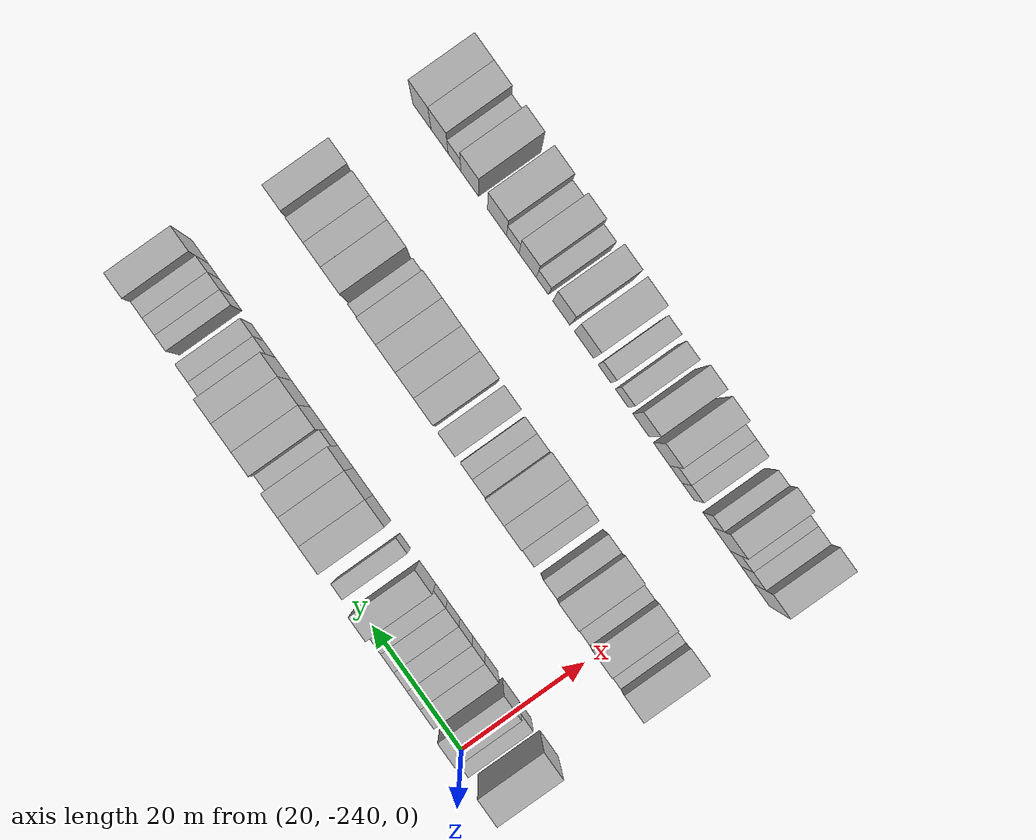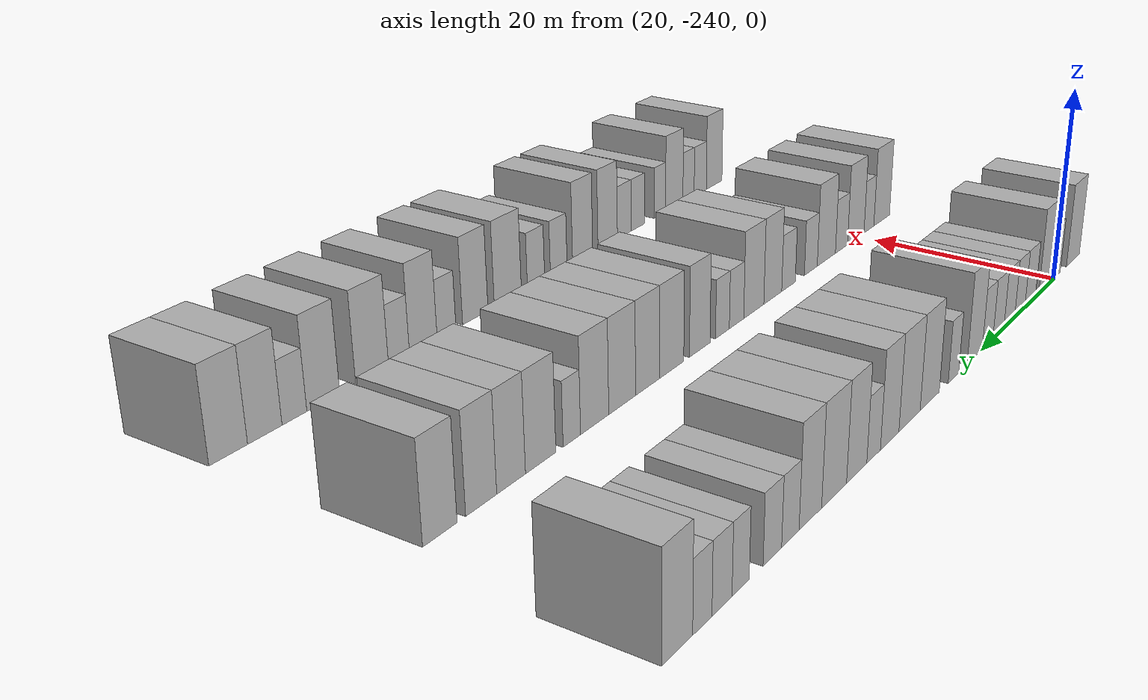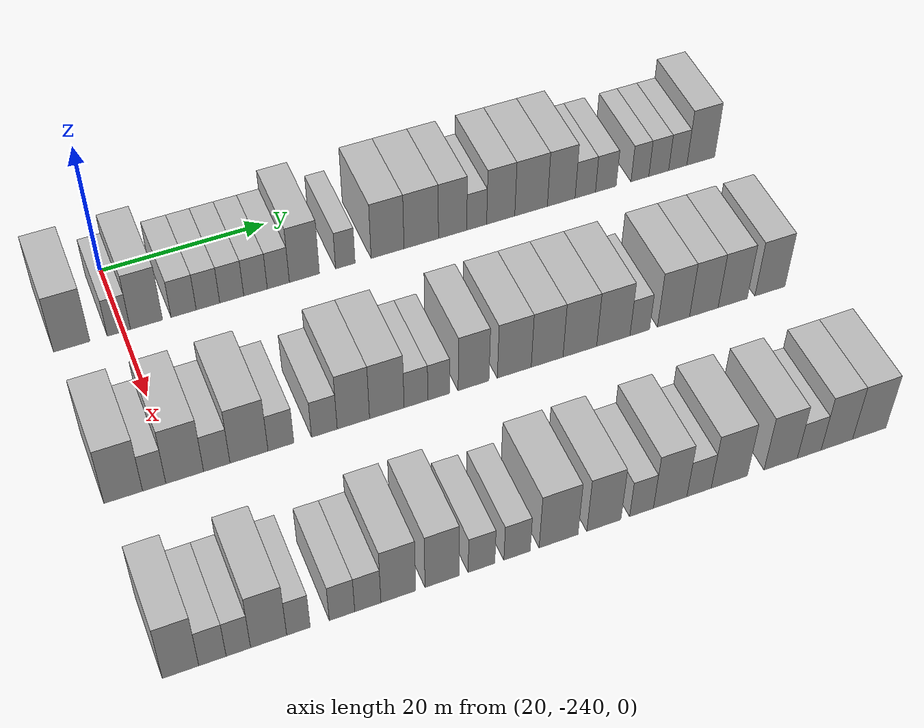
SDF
<sdf version="1.6">
 <world name="default">
  <model name="building_1">
   <static>1</static>
   <pose>25.0000 -245.9093 0 0.000000 0.000000 0.000000</pose>
   <link name="link">
    <pose>0 0 4.50 0 0 0</pose>
    <collision name="collision"><geometry><box><size>10.0000 4.1814 9.0000</size></box></geometry></collision>
    <visual name="visual">
     <cast_shadows>0</cast_shadows>
     <geometry><box><size>10.0000 4.1814 9.0000</size></box></geometry>
     <material>
      <script>
       <uri>model://HANNAS_wall/materials/scripts</uri>
       <uri>model://HANNAS_wall/materials/textures</uri>
       <name>vrc/HANNAS_wall</name>
      </script>
     </material>
    </visual>
   </link>
  </model>
  <model name="building_2">
   <static>1</static>
   <pose>25.0000 -240.4762 0 0.000000 0.000000 0.000000</pose>
   <link name="link">
    <pose>0 0 3.00 0 0 0</pose>
    <collision name="collision"><geometry><box><size>10.0000 2.6848 6.0000</size></box></geometry></collision>
    <visual name="visual">
     <cast_shadows>0</cast_shadows>
     <geometry><box><size>10.0000 2.6848 6.0000</size></box></geometry>
     <material>
      <script>
       <uri>model://HANNAS_wall/materials/scripts</uri>
       <uri>model://HANNAS_wall/materials/textures</uri>
       <name>vrc/HANNAS_wall</name>
      </script>
     </material>
    </visual>
   </link>
  </model>
  <model name="building_3">
   <static>1</static>
   <pose>25.0000 -237.2547 0 0.000000 0.000000 0.000000</pose>
   <link name="link">
    <pose>0 0 4.50 0 0 0</pose>
    <collision name="collision"><geometry><box><size>10.0000 3.7582 9.0000</size></box></geometry></collision>
    <visual name="visual">
     <cast_shadows>0</cast_shadows>
     <geometry><box><size>10.0000 3.7582 9.0000</size></box></geometry>
     <material>
      <script>
       <uri>model://HANNAS_wall/materials/scripts</uri>
       <uri>model://HANNAS_wall/materials/textures</uri>
       <name>vrc/HANNAS_wall</name>
      </script>
     </material>
    </visual>
   </link>
  </model>
  <model name="building_4">
   <static>1</static>
   <pose>25.0000 -232.8869 0 0.000000 0.000000 0.000000</pose>
   <link name="link">
    <pose>0 0 3.00 0 0 0</pose>
    <collision name="collision"><geometry><box><size>10.0000 2.9774 6.0000</size></box></geometry></collision>
    <visual name="visual">
     <cast_shadows>0</cast_shadows>
     <geometry><box><size>10.0000 2.9774 6.0000</size></box></geometry>
     <material>
      <script>
       <uri>model://HANNAS_wall/materials/scripts</uri>
       <uri>model://HANNAS_wall/materials/textures</uri>
       <name>vrc/HANNAS_wall</name>
      </script>
     </material>
    </visual>
   </link>
  </model>
  <model name="building_5">
   <static>1</static>
   <pose>25.0000 -229.9949 0 0.000000 0.000000 0.000000</pose>
   <link name="link">
    <pose>0 0 3.00 0 0 0</pose>
    <collision name="collision"><geometry><box><size>10.0000 2.8066 6.0000</size></box></geometry></collision>
    <visual name="visual">
     <cast_shadows>0</cast_shadows>
     <geometry><box><size>10.0000 2.8066 6.0000</size></box></geometry>
     <material>
      <script>
       <uri>model://HANNAS_wall/materials/scripts</uri>
       <uri>model://HANNAS_wall/materials/textures</uri>
       <name>vrc/HANNAS_wall</name>
      </script>
     </material>
    </visual>
   </link>
  </model>
  <model name="building_6">
   <static>1</static>
   <pose>25.0000 -227.1501 0 0.000000 0.000000 0.000000</pose>
   <link name="link">
    <pose>0 0 3.00 0 0 0</pose>
    <collision name="collision"><geometry><box><size>10.0000 2.8830 6.0000</size></box></geometry></collision>
    <visual name="visual">
     <cast_shadows>0</cast_shadows>
     <geometry><box><size>10.0000 2.8830 6.0000</size></box></geometry>
     <material>
      <script>
       <uri>model://HANNAS_wall/materials/scripts</uri>
       <uri>model://HANNAS_wall/materials/textures</uri>
       <name>vrc/HANNAS_wall</name>
      </script>
     </material>
    </visual>
   </link>
  </model>
  <model name="building_7">
   <static>1</static>
   <pose>25.0000 -224.2862 0 0.000000 0.000000 0.000000</pose>
   <link name="link">
    <pose>0 0 3.00 0 0 0</pose>
    <collision name="collision"><geometry><box><size>10.0000 2.8448 6.0000</size></box></geometry></collision>
    <visual name="visual">
     <cast_shadows>0</cast_shadows>
     <geometry><box><size>10.0000 2.8448 6.0000</size></box></geometry>
     <material>
      <script>
       <uri>model://HANNAS_wall/materials/scripts</uri>
       <uri>model://HANNAS_wall/materials/textures</uri>
       <name>vrc/HANNAS_wall</name>
      </script>
     </material>
    </visual>
   </link>
  </model>
  <model name="building_8">
   <static>1</static>
   <pose>25.0000 -221.5211 0 0.000000 0.000000 0.000000</pose>
   <link name="link">
    <pose>0 0 3.00 0 0 0</pose>
    <collision name="collision"><geometry><box><size>10.0000 2.6853 6.0000</size></box></geometry></collision>
    <visual name="visual">
     <cast_shadows>0</cast_shadows>
     <geometry><box><size>10.0000 2.6853 6.0000</size></box></geometry>
     <material>
      <script>
       <uri>model://HANNAS_wall/materials/scripts</uri>
       <uri>model://HANNAS_wall/materials/textures</uri>
       <name>vrc/HANNAS_wall</name>
      </script>
     </material>
    </visual>
   </link>
  </model>
  <model name="building_9">
   <static>1</static>
   <pose>25.0000 -218.3408 0 0.000000 0.000000 0.000000</pose>
   <link name="link">
    <pose>0 0 4.50 0 0 0</pose>
    <collision name="collision"><geometry><box><size>10.0000 3.6753 9.0000</size></box></geometry></collision>
    <visual name="visual">
     <cast_shadows>0</cast_shadows>
     <geometry><box><size>10.0000 3.6753 9.0000</size></box></geometry>
     <material>
      <script>
       <uri>model://HANNAS_wall/materials/scripts</uri>
       <uri>model://HANNAS_wall/materials/textures</uri>
       <name>vrc/HANNAS_wall</name>
      </script>
     </material>
    </visual>
   </link>
  </model>
  <model name="building_10">
   <static>1</static>
   <pose>25.0000 -213.2970 0 0.000000 0.000000 0.000000</pose>
   <link name="link">
    <pose>0 0 3.00 0 0 0</pose>
    <collision name="collision"><geometry><box><size>10.0000 2.4124 6.0000</size></box></geometry></collision>
    <visual name="visual">
     <cast_shadows>0</cast_shadows>
     <geometry><box><size>10.0000 2.4124 6.0000</size></box></geometry>
     <material>
      <script>
       <uri>model://HANNAS_wall/materials/scripts</uri>
       <uri>model://HANNAS_wall/materials/textures</uri>
       <name>vrc/HANNAS_wall</name>
      </script>
     </material>
    </visual>
   </link>
  </model>
  <model name="building_11">
   <static>1</static>
   <pose>25.0000 -208.0230 0 0.000000 0.000000 0.000000</pose>
   <link name="link">
    <pose>0 0 4.50 0 0 0</pose>
    <collision name="collision"><geometry><box><size>10.0000 4.1356 9.0000</size></box></geometry></collision>
    <visual name="visual">
     <cast_shadows>0</cast_shadows>
     <geometry><box><size>10.0000 4.1356 9.0000</size></box></geometry>
     <material>
      <script>
       <uri>model://HANNAS_wall/materials/scripts</uri>
       <uri>model://HANNAS_wall/materials/textures</uri>
       <name>vrc/HANNAS_wall</name>
      </script>
     </material>
    </visual>
   </link>
  </model>
  <model name="building_12">
   <static>1</static>
   <pose>25.0000 -203.7752 0 0.000000 0.000000 0.000000</pose>
   <link name="link">
    <pose>0 0 4.50 0 0 0</pose>
    <collision name="collision"><geometry><box><size>10.0000 4.3599 9.0000</size></box></geometry></collision>
    <visual name="visual">
     <cast_shadows>0</cast_shadows>
     <geometry><box><size>10.0000 4.3599 9.0000</size></box></geometry>
     <material>
      <script>
       <uri>model://HANNAS_wall/materials/scripts</uri>
       <uri>model://HANNAS_wall/materials/textures</uri>
       <name>vrc/HANNAS_wall</name>
      </script>
     </material>
    </visual>
   </link>
  </model>
  <model name="building_13">
   <static>1</static>
   <pose>25.0000 -199.7875 0 0.000000 0.000000 0.000000</pose>
   <link name="link">
    <pose>0 0 4.50 0 0 0</pose>
    <collision name="collision"><geometry><box><size>10.0000 3.6156 9.0000</size></box></geometry></collision>
    <visual name="visual">
     <cast_shadows>0</cast_shadows>
     <geometry><box><size>10.0000 3.6156 9.0000</size></box></geometry>
     <material>
      <script>
       <uri>model://HANNAS_wall/materials/scripts</uri>
       <uri>model://HANNAS_wall/materials/textures</uri>
       <name>vrc/HANNAS_wall</name>
      </script>
     </material>
    </visual>
   </link>
  </model>
  <model name="building_14">
   <static>1</static>
   <pose>25.0000 -196.6971 0 0.000000 0.000000 0.000000</pose>
   <link name="link">
    <pose>0 0 3.00 0 0 0</pose>
    <collision name="collision"><geometry><box><size>10.0000 2.5653 6.0000</size></box></geometry></collision>
    <visual name="visual">
     <cast_shadows>0</cast_shadows>
     <geometry><box><size>10.0000 2.5653 6.0000</size></box></geometry>
     <material>
      <script>
       <uri>model://HANNAS_wall/materials/scripts</uri>
       <uri>model://HANNAS_wall/materials/textures</uri>
       <name>vrc/HANNAS_wall</name>
      </script>
     </material>
    </visual>
   </link>
  </model>
  <model name="building_15">
   <static>1</static>
   <pose>25.0000 -193.5860 0 0.000000 0.000000 0.000000</pose>
   <link name="link">
    <pose>0 0 4.50 0 0 0</pose>
    <collision name="collision"><geometry><box><size>10.0000 3.6568 9.0000</size></box></geometry></collision>
    <visual name="visual">
     <cast_shadows>0</cast_shadows>
     <geometry><box><size>10.0000 3.6568 9.0000</size></box></geometry>
     <material>
      <script>
       <uri>model://HANNAS_wall/materials/scripts</uri>
       <uri>model://HANNAS_wall/materials/textures</uri>
       <name>vrc/HANNAS_wall</name>
      </script>
     </material>
    </visual>
   </link>
  </model>
  <model name="building_16">
   <static>1</static>
   <pose>25.0000 -189.6194 0 0.000000 0.000000 0.000000</pose>
   <link name="link">
    <pose>0 0 4.50 0 0 0</pose>
    <collision name="collision"><geometry><box><size>10.0000 4.2762 9.0000</size></box></geometry></collision>
    <visual name="visual">
     <cast_shadows>0</cast_shadows>
     <geometry><box><size>10.0000 4.2762 9.0000</size></box></geometry>
     <material>
      <script>
       <uri>model://HANNAS_wall/materials/scripts</uri>
       <uri>model://HANNAS_wall/materials/textures</uri>
       <name>vrc/HANNAS_wall</name>
      </script>
     </material>
    </visual>
   </link>
  </model>
  <model name="building_17">
   <static>1</static>
   <pose>25.0000 -185.6479 0 0.000000 0.000000 0.000000</pose>
   <link name="link">
    <pose>0 0 4.50 0 0 0</pose>
    <collision name="collision"><geometry><box><size>10.0000 3.6668 9.0000</size></box></geometry></collision>
    <visual name="visual">
     <cast_shadows>0</cast_shadows>
     <geometry><box><size>10.0000 3.6668 9.0000</size></box></geometry>
     <material>
      <script>
       <uri>model://HANNAS_wall/materials/scripts</uri>
       <uri>model://HANNAS_wall/materials/textures</uri>
       <name>vrc/HANNAS_wall</name>
      </script>
     </material>
    </visual>
   </link>
  </model>
  <model name="building_18">
   <static>1</static>
   <pose>25.0000 -182.4574 0 0.000000 0.000000 0.000000</pose>
   <link name="link">
    <pose>0 0 3.00 0 0 0</pose>
    <collision name="collision"><geometry><box><size>10.0000 2.7142 6.0000</size></box></geometry></collision>
    <visual name="visual">
     <cast_shadows>0</cast_shadows>
     <geometry><box><size>10.0000 2.7142 6.0000</size></box></geometry>
     <material>
      <script>
       <uri>model://HANNAS_wall/materials/scripts</uri>
       <uri>model://HANNAS_wall/materials/textures</uri>
       <name>vrc/HANNAS_wall</name>
      </script>
     </material>
    </visual>
   </link>
  </model>
  <model name="building_19">
   <static>1</static>
   <pose>25.0000 -179.7109 0 0.000000 0.000000 0.000000</pose>
   <link name="link">
    <pose>0 0 3.00 0 0 0</pose>
    <collision name="collision"><geometry><box><size>10.0000 2.7788 6.0000</size></box></geometry></collision>
    <visual name="visual">
     <cast_shadows>0</cast_shadows>
     <geometry><box><size>10.0000 2.7788 6.0000</size></box></geometry>
     <material>
      <script>
       <uri>model://HANNAS_wall/materials/scripts</uri>
       <uri>model://HANNAS_wall/materials/textures</uri>
       <name>vrc/HANNAS_wall</name>
      </script>
     </material>
    </visual>
   </link>
  </model>
  <model name="building_20">
   <static>1</static>
   <pose>25.0000 -175.1163 0 0.000000 0.000000 0.000000</pose>
   <link name="link">
    <pose>0 0 3.00 0 0 0</pose>
    <collision name="collision"><geometry><box><size>10.0000 2.4105 6.0000</size></box></geometry></collision>
    <visual name="visual">
     <cast_shadows>0</cast_shadows>
     <geometry><box><size>10.0000 2.4105 6.0000</size></box></geometry>
     <material>
      <script>
       <uri>model://HANNAS_wall/materials/scripts</uri>
       <uri>model://HANNAS_wall/materials/textures</uri>
       <name>vrc/HANNAS_wall</name>
      </script>
     </material>
    </visual>
   </link>
  </model>
  <model name="building_21">
   <static>1</static>
   <pose>25.0000 -172.5600 0 0.000000 0.000000 0.000000</pose>
   <link name="link">
    <pose>0 0 3.00 0 0 0</pose>
    <collision name="collision"><geometry><box><size>10.0000 2.7021 6.0000</size></box></geometry></collision>
    <visual name="visual">
     <cast_shadows>0</cast_shadows>
     <geometry><box><size>10.0000 2.7021 6.0000</size></box></geometry>
     <material>
      <script>
       <uri>model://HANNAS_wall/materials/scripts</uri>
       <uri>model://HANNAS_wall/materials/textures</uri>
       <name>vrc/HANNAS_wall</name>
      </script>
     </material>
    </visual>
   </link>
  </model>
  <model name="building_22">
   <static>1</static>
   <pose>25.0000 -169.9578 0 0.000000 0.000000 0.000000</pose>
   <link name="link">
    <pose>0 0 3.00 0 0 0</pose>
    <collision name="collision"><geometry><box><size>10.0000 2.5024 6.0000</size></box></geometry></collision>
    <visual name="visual">
     <cast_shadows>0</cast_shadows>
     <geometry><box><size>10.0000 2.5024 6.0000</size></box></geometry>
     <material>
      <script>
       <uri>model://HANNAS_wall/materials/scripts</uri>
       <uri>model://HANNAS_wall/materials/textures</uri>
       <name>vrc/HANNAS_wall</name>
      </script>
     </material>
    </visual>
   </link>
  </model>
  <model name="building_23">
   <static>1</static>
   <pose>25.0000 -166.7924 0 0.000000 0.000000 0.000000</pose>
   <link name="link">
    <pose>0 0 4.50 0 0 0</pose>
    <collision name="collision"><geometry><box><size>10.0000 3.8284 9.0000</size></box></geometry></collision>
    <visual name="visual">
     <cast_shadows>0</cast_shadows>
     <geometry><box><size>10.0000 3.8284 9.0000</size></box></geometry>
     <material>
      <script>
       <uri>model://HANNAS_wall/materials/scripts</uri>
       <uri>model://HANNAS_wall/materials/textures</uri>
       <name>vrc/HANNAS_wall</name>
      </script>
     </material>
    </visual>
   </link>
  </model>
  <model name="building_129">
   <static>1</static>
   <pose>47.0000 -245.9206 0 0.000000 0.000000 0.000000</pose>
   <link name="link">
    <pose>0 0 4.50 0 0 0</pose>
    <collision name="collision"><geometry><box><size>10.0000 4.1589 9.0000</size></box></geometry></collision>
    <visual name="visual">
     <cast_shadows>0</cast_shadows>
     <geometry><box><size>10.0000 4.1589 9.0000</size></box></geometry>
     <material>
      <script>
       <uri>model://HANNAS_wall/materials/scripts</uri>
       <uri>model://HANNAS_wall/materials/textures</uri>
       <name>vrc/HANNAS_wall</name>
      </script>
     </material>
    </visual>
   </link>
  </model>
  <model name="building_130">
   <static>1</static>
   <pose>47.0000 -242.5768 0 0.000000 0.000000 0.000000</pose>
   <link name="link">
    <pose>0 0 3.00 0 0 0</pose>
    <collision name="collision"><geometry><box><size>10.0000 2.5286 6.0000</size></box></geometry></collision>
    <visual name="visual">
     <cast_shadows>0</cast_shadows>
     <geometry><box><size>10.0000 2.5286 6.0000</size></box></geometry>
     <material>
      <script>
       <uri>model://HANNAS_wall/materials/scripts</uri>
       <uri>model://HANNAS_wall/materials/textures</uri>
       <name>vrc/HANNAS_wall</name>
      </script>
     </material>
    </visual>
   </link>
  </model>
  <model name="building_131">
   <static>1</static>
   <pose>47.0000 -239.2436 0 0.000000 0.000000 0.000000</pose>
   <link name="link">
    <pose>0 0 4.50 0 0 0</pose>
    <collision name="collision"><geometry><box><size>10.0000 4.1377 9.0000</size></box></geometry></collision>
    <visual name="visual">
     <cast_shadows>0</cast_shadows>
     <geometry><box><size>10.0000 4.1377 9.0000</size></box></geometry>
     <material>
      <script>
       <uri>model://HANNAS_wall/materials/scripts</uri>
       <uri>model://HANNAS_wall/materials/textures</uri>
       <name>vrc/HANNAS_wall</name>
      </script>
     </material>
    </visual>
   </link>
  </model>
  <model name="building_132">
   <static>1</static>
   <pose>47.0000 -235.7155 0 0.000000 0.000000 0.000000</pose>
   <link name="link">
    <pose>0 0 3.00 0 0 0</pose>
    <collision name="collision"><geometry><box><size>10.0000 2.9186 6.0000</size></box></geometry></collision>
    <visual name="visual">
     <cast_shadows>0</cast_shadows>
     <geometry><box><size>10.0000 2.9186 6.0000</size></box></geometry>
     <material>
      <script>
       <uri>model://HANNAS_wall/materials/scripts</uri>
       <uri>model://HANNAS_wall/materials/textures</uri>
       <name>vrc/HANNAS_wall</name>
      </script>
     </material>
    </visual>
   </link>
  </model>
  <model name="building_133">
   <static>1</static>
   <pose>47.0000 -232.1317 0 0.000000 0.000000 0.000000</pose>
   <link name="link">
    <pose>0 0 4.50 0 0 0</pose>
    <collision name="collision"><geometry><box><size>10.0000 4.2489 9.0000</size></box></geometry></collision>
    <visual name="visual">
     <cast_shadows>0</cast_shadows>
     <geometry><box><size>10.0000 4.2489 9.0000</size></box></geometry>
     <material>
      <script>
       <uri>model://HANNAS_wall/materials/scripts</uri>
       <uri>model://HANNAS_wall/materials/textures</uri>
       <name>vrc/HANNAS_wall</name>
      </script>
     </material>
    </visual>
   </link>
  </model>
  <model name="building_134">
   <static>1</static>
   <pose>47.0000 -228.5532 0 0.000000 0.000000 0.000000</pose>
   <link name="link">
    <pose>0 0 3.00 0 0 0</pose>
    <collision name="collision"><geometry><box><size>10.0000 2.9081 6.0000</size></box></geometry></collision>
    <visual name="visual">
     <cast_shadows>0</cast_shadows>
     <geometry><box><size>10.0000 2.9081 6.0000</size></box></geometry>
     <material>
      <script>
       <uri>model://HANNAS_wall/materials/scripts</uri>
       <uri>model://HANNAS_wall/materials/textures</uri>
       <name>vrc/HANNAS_wall</name>
      </script>
     </material>
    </visual>
   </link>
  </model>
  <model name="building_135">
   <static>1</static>
   <pose>47.0000 -223.6337 0 0.000000 0.000000 0.000000</pose>
   <link name="link">
    <pose>0 0 3.00 0 0 0</pose>
    <collision name="collision"><geometry><box><size>10.0000 2.9309 6.0000</size></box></geometry></collision>
    <visual name="visual">
     <cast_shadows>0</cast_shadows>
     <geometry><box><size>10.0000 2.9309 6.0000</size></box></geometry>
     <material>
      <script>
       <uri>model://HANNAS_wall/materials/scripts</uri>
       <uri>model://HANNAS_wall/materials/textures</uri>
       <name>vrc/HANNAS_wall</name>
      </script>
     </material>
    </visual>
   </link>
  </model>
  <model name="building_136">
   <static>1</static>
   <pose>47.0000 -220.3090 0 0.000000 0.000000 0.000000</pose>
   <link name="link">
    <pose>0 0 4.50 0 0 0</pose>
    <collision name="collision"><geometry><box><size>10.0000 3.7185 9.0000</size></box></geometry></collision>
    <visual name="visual">
     <cast_shadows>0</cast_shadows>
     <geometry><box><size>10.0000 3.7185 9.0000</size></box></geometry>
     <material>
      <script>
       <uri>model://HANNAS_wall/materials/scripts</uri>
       <uri>model://HANNAS_wall/materials/textures</uri>
       <name>vrc/HANNAS_wall</name>
      </script>
     </material>
    </visual>
   </link>
  </model>
  <model name="building_137">
   <static>1</static>
   <pose>47.0000 -216.4421 0 0.000000 0.000000 0.000000</pose>
   <link name="link">
    <pose>0 0 4.50 0 0 0</pose>
    <collision name="collision"><geometry><box><size>10.0000 4.0154 9.0000</size></box></geometry></collision>
    <visual name="visual">
     <cast_shadows>0</cast_shadows>
     <geometry><box><size>10.0000 4.0154 9.0000</size></box></geometry>
     <material>
      <script>
       <uri>model://HANNAS_wall/materials/scripts</uri>
       <uri>model://HANNAS_wall/materials/textures</uri>
       <name>vrc/HANNAS_wall</name>
      </script>
     </material>
    </visual>
   </link>
  </model>
  <model name="building_138">
   <static>1</static>
   <pose>47.0000 -213.0478 0 0.000000 0.000000 0.000000</pose>
   <link name="link">
    <pose>0 0 3.00 0 0 0</pose>
    <collision name="collision"><geometry><box><size>10.0000 2.7731 6.0000</size></box></geometry></collision>
    <visual name="visual">
     <cast_shadows>0</cast_shadows>
     <geometry><box><size>10.0000 2.7731 6.0000</size></box></geometry>
     <material>
      <script>
       <uri>model://HANNAS_wall/materials/scripts</uri>
       <uri>model://HANNAS_wall/materials/textures</uri>
       <name>vrc/HANNAS_wall</name>
      </script>
     </material>
    </visual>
   </link>
  </model>
  <model name="building_139">
   <static>1</static>
   <pose>47.0000 -210.3686 0 0.000000 0.000000 0.000000</pose>
   <link name="link">
    <pose>0 0 3.00 0 0 0</pose>
    <collision name="collision"><geometry><box><size>10.0000 2.5853 6.0000</size></box></geometry></collision>
    <visual name="visual">
     <cast_shadows>0</cast_shadows>
     <geometry><box><size>10.0000 2.5853 6.0000</size></box></geometry>
     <material>
      <script>
       <uri>model://HANNAS_wall/materials/scripts</uri>
       <uri>model://HANNAS_wall/materials/textures</uri>
       <name>vrc/HANNAS_wall</name>
      </script>
     </material>
    </visual>
   </link>
  </model>
  <model name="building_140">
   <static>1</static>
   <pose>47.0000 -206.2376 0 0.000000 0.000000 0.000000</pose>
   <link name="link">
    <pose>0 0 4.50 0 0 0</pose>
    <collision name="collision"><geometry><box><size>10.0000 3.6766 9.0000</size></box></geometry></collision>
    <visual name="visual">
     <cast_shadows>0</cast_shadows>
     <geometry><box><size>10.0000 3.6766 9.0000</size></box></geometry>
     <material>
      <script>
       <uri>model://HANNAS_wall/materials/scripts</uri>
       <uri>model://HANNAS_wall/materials/textures</uri>
       <name>vrc/HANNAS_wall</name>
      </script>
     </material>
    </visual>
   </link>
  </model>
  <model name="building_141">
   <static>1</static>
   <pose>47.0000 -201.3535 0 0.000000 0.000000 0.000000</pose>
   <link name="link">
    <pose>0 0 4.50 0 0 0</pose>
    <collision name="collision"><geometry><box><size>10.0000 4.0916 9.0000</size></box></geometry></collision>
    <visual name="visual">
     <cast_shadows>0</cast_shadows>
     <geometry><box><size>10.0000 4.0916 9.0000</size></box></geometry>
     <material>
      <script>
       <uri>model://HANNAS_wall/materials/scripts</uri>
       <uri>model://HANNAS_wall/materials/textures</uri>
       <name>vrc/HANNAS_wall</name>
      </script>
     </material>
    </visual>
   </link>
  </model>
  <model name="building_142">
   <static>1</static>
   <pose>47.0000 -197.3681 0 0.000000 0.000000 0.000000</pose>
   <link name="link">
    <pose>0 0 4.50 0 0 0</pose>
    <collision name="collision"><geometry><box><size>10.0000 3.8791 9.0000</size></box></geometry></collision>
    <visual name="visual">
     <cast_shadows>0</cast_shadows>
     <geometry><box><size>10.0000 3.8791 9.0000</size></box></geometry>
     <material>
      <script>
       <uri>model://HANNAS_wall/materials/scripts</uri>
       <uri>model://HANNAS_wall/materials/textures</uri>
       <name>vrc/HANNAS_wall</name>
      </script>
     </material>
    </visual>
   </link>
  </model>
  <model name="building_143">
   <static>1</static>
   <pose>47.0000 -193.3549 0 0.000000 0.000000 0.000000</pose>
   <link name="link">
    <pose>0 0 4.50 0 0 0</pose>
    <collision name="collision"><geometry><box><size>10.0000 4.1473 9.0000</size></box></geometry></collision>
    <visual name="visual">
     <cast_shadows>0</cast_shadows>
     <geometry><box><size>10.0000 4.1473 9.0000</size></box></geometry>
     <material>
      <script>
       <uri>model://HANNAS_wall/materials/scripts</uri>
       <uri>model://HANNAS_wall/materials/textures</uri>
       <name>vrc/HANNAS_wall</name>
      </script>
     </material>
    </visual>
   </link>
  </model>
  <model name="building_144">
   <static>1</static>
   <pose>47.0000 -189.2105 0 0.000000 0.000000 0.000000</pose>
   <link name="link">
    <pose>0 0 4.50 0 0 0</pose>
    <collision name="collision"><geometry><box><size>10.0000 4.1415 9.0000</size></box></geometry></collision>
    <visual name="visual">
     <cast_shadows>0</cast_shadows>
     <geometry><box><size>10.0000 4.1415 9.0000</size></box></geometry>
     <material>
      <script>
       <uri>model://HANNAS_wall/materials/scripts</uri>
       <uri>model://HANNAS_wall/materials/textures</uri>
       <name>vrc/HANNAS_wall</name>
      </script>
     </material>
    </visual>
   </link>
  </model>
  <model name="building_145">
   <static>1</static>
   <pose>47.0000 -185.9097 0 0.000000 0.000000 0.000000</pose>
   <link name="link">
    <pose>0 0 3.00 0 0 0</pose>
    <collision name="collision"><geometry><box><size>10.0000 2.4602 6.0000</size></box></geometry></collision>
    <visual name="visual">
     <cast_shadows>0</cast_shadows>
     <geometry><box><size>10.0000 2.4602 6.0000</size></box></geometry>
     <material>
      <script>
       <uri>model://HANNAS_wall/materials/scripts</uri>
       <uri>model://HANNAS_wall/materials/textures</uri>
       <name>vrc/HANNAS_wall</name>
      </script>
     </material>
    </visual>
   </link>
  </model>
  <model name="building_146">
   <static>1</static>
   <pose>47.0000 -181.6501 0 0.000000 0.000000 0.000000</pose>
   <link name="link">
    <pose>0 0 4.50 0 0 0</pose>
    <collision name="collision"><geometry><box><size>10.0000 4.0591 9.0000</size></box></geometry></collision>
    <visual name="visual">
     <cast_shadows>0</cast_shadows>
     <geometry><box><size>10.0000 4.0591 9.0000</size></box></geometry>
     <material>
      <script>
       <uri>model://HANNAS_wall/materials/scripts</uri>
       <uri>model://HANNAS_wall/materials/textures</uri>
       <name>vrc/HANNAS_wall</name>
      </script>
     </material>
    </visual>
   </link>
  </model>
  <model name="building_147">
   <static>1</static>
   <pose>47.0000 -177.7908 0 0.000000 0.000000 0.000000</pose>
   <link name="link">
    <pose>0 0 4.50 0 0 0</pose>
    <collision name="collision"><geometry><box><size>10.0000 3.6594 9.0000</size></box></geometry></collision>
    <visual name="visual">
     <cast_shadows>0</cast_shadows>
     <geometry><box><size>10.0000 3.6594 9.0000</size></box></geometry>
     <material>
      <script>
       <uri>model://HANNAS_wall/materials/scripts</uri>
       <uri>model://HANNAS_wall/materials/textures</uri>
       <name>vrc/HANNAS_wall</name>
      </script>
     </material>
    </visual>
   </link>
  </model>
  <model name="building_148">
   <static>1</static>
   <pose>47.0000 -174.0818 0 0.000000 0.000000 0.000000</pose>
   <link name="link">
    <pose>0 0 4.50 0 0 0</pose>
    <collision name="collision"><geometry><box><size>10.0000 3.7587 9.0000</size></box></geometry></collision>
    <visual name="visual">
     <cast_shadows>0</cast_shadows>
     <geometry><box><size>10.0000 3.7587 9.0000</size></box></geometry>
     <material>
      <script>
       <uri>model://HANNAS_wall/materials/scripts</uri>
       <uri>model://HANNAS_wall/materials/textures</uri>
       <name>vrc/HANNAS_wall</name>
      </script>
     </material>
    </visual>
   </link>
  </model>
  <model name="building_149">
   <static>1</static>
   <pose>47.0000 -169.2426 0 0.000000 0.000000 0.000000</pose>
   <link name="link">
    <pose>0 0 4.50 0 0 0</pose>
    <collision name="collision"><geometry><box><size>10.0000 3.9196 9.0000</size></box></geometry></collision>
    <visual name="visual">
     <cast_shadows>0</cast_shadows>
     <geometry><box><size>10.0000 3.9196 9.0000</size></box></geometry>
     <material>
      <script>
       <uri>model://HANNAS_wall/materials/scripts</uri>
       <uri>model://HANNAS_wall/materials/textures</uri>
       <name>vrc/HANNAS_wall</name>
      </script>
     </material>
    </visual>
   </link>
  </model>
  <model name="building_256">
   <static>1</static>
   <pose>69.0000 -246.1630 0 0.000000 0.000000 0.000000</pose>
   <link name="link">
    <pose>0 0 4.50 0 0 0</pose>
    <collision name="collision"><geometry><box><size>10.0000 3.6741 9.0000</size></box></geometry></collision>
    <visual name="visual">
     <cast_shadows>0</cast_shadows>
     <geometry><box><size>10.0000 3.6741 9.0000</size></box></geometry>
     <material>
      <script>
       <uri>model://HANNAS_wall/materials/scripts</uri>
       <uri>model://HANNAS_wall/materials/textures</uri>
       <name>vrc/HANNAS_wall</name>
      </script>
     </material>
    </visual>
   </link>
  </model>
  <model name="building_257">
   <static>1</static>
   <pose>69.0000 -242.9348 0 0.000000 0.000000 0.000000</pose>
   <link name="link">
    <pose>0 0 3.00 0 0 0</pose>
    <collision name="collision"><geometry><box><size>10.0000 2.7824 6.0000</size></box></geometry></collision>
    <visual name="visual">
     <cast_shadows>0</cast_shadows>
     <geometry><box><size>10.0000 2.7824 6.0000</size></box></geometry>
     <material>
      <script>
       <uri>model://HANNAS_wall/materials/scripts</uri>
       <uri>model://HANNAS_wall/materials/textures</uri>
       <name>vrc/HANNAS_wall</name>
      </script>
     </material>
    </visual>
   </link>
  </model>
  <model name="building_258">
   <static>1</static>
   <pose>69.0000 -240.2909 0 0.000000 0.000000 0.000000</pose>
   <link name="link">
    <pose>0 0 3.00 0 0 0</pose>
    <collision name="collision"><geometry><box><size>10.0000 2.5054 6.0000</size></box></geometry></collision>
    <visual name="visual">
     <cast_shadows>0</cast_shadows>
     <geometry><box><size>10.0000 2.5054 6.0000</size></box></geometry>
     <material>
      <script>
       <uri>model://HANNAS_wall/materials/scripts</uri>
       <uri>model://HANNAS_wall/materials/textures</uri>
       <name>vrc/HANNAS_wall</name>
      </script>
     </material>
    </visual>
   </link>
  </model>
  <model name="building_259">
   <static>1</static>
   <pose>69.0000 -237.1743 0 0.000000 0.000000 0.000000</pose>
   <link name="link">
    <pose>0 0 4.50 0 0 0</pose>
    <collision name="collision"><geometry><box><size>10.0000 3.7278 9.0000</size></box></geometry></collision>
    <visual name="visual">
     <cast_shadows>0</cast_shadows>
     <geometry><box><size>10.0000 3.7278 9.0000</size></box></geometry>
     <material>
      <script>
       <uri>model://HANNAS_wall/materials/scripts</uri>
       <uri>model://HANNAS_wall/materials/textures</uri>
       <name>vrc/HANNAS_wall</name>
      </script>
     </material>
    </visual>
   </link>
  </model>
  <model name="building_260">
   <static>1</static>
   <pose>69.0000 -234.0896 0 0.000000 0.000000 0.000000</pose>
   <link name="link">
    <pose>0 0 3.00 0 0 0</pose>
    <collision name="collision"><geometry><box><size>10.0000 2.4417 6.0000</size></box></geometry></collision>
    <visual name="visual">
     <cast_shadows>0</cast_shadows>
     <geometry><box><size>10.0000 2.4417 6.0000</size></box></geometry>
     <material>
      <script>
       <uri>model://HANNAS_wall/materials/scripts</uri>
       <uri>model://HANNAS_wall/materials/textures</uri>
       <name>vrc/HANNAS_wall</name>
      </script>
     </material>
    </visual>
   </link>
  </model>
  <model name="building_261">
   <static>1</static>
   <pose>69.0000 -229.5250 0 0.000000 0.000000 0.000000</pose>
   <link name="link">
    <pose>0 0 3.00 0 0 0</pose>
    <collision name="collision"><geometry><box><size>10.0000 2.6875 6.0000</size></box></geometry></collision>
    <visual name="visual">
     <cast_shadows>0</cast_shadows>
     <geometry><box><size>10.0000 2.6875 6.0000</size></box></geometry>
     <material>
      <script>
       <uri>model://HANNAS_wall/materials/scripts</uri>
       <uri>model://HANNAS_wall/materials/textures</uri>
       <name>vrc/HANNAS_wall</name>
      </script>
     </material>
    </visual>
   </link>
  </model>
  <model name="building_262">
   <static>1</static>
   <pose>69.0000 -226.7902 0 0.000000 0.000000 0.000000</pose>
   <link name="link">
    <pose>0 0 3.00 0 0 0</pose>
    <collision name="collision"><geometry><box><size>10.0000 2.7821 6.0000</size></box></geometry></collision>
    <visual name="visual">
     <cast_shadows>0</cast_shadows>
     <geometry><box><size>10.0000 2.7821 6.0000</size></box></geometry>
     <material>
      <script>
       <uri>model://HANNAS_wall/materials/scripts</uri>
       <uri>model://HANNAS_wall/materials/textures</uri>
       <name>vrc/HANNAS_wall</name>
      </script>
     </material>
    </visual>
   </link>
  </model>
  <model name="building_263">
   <static>1</static>
   <pose>69.0000 -223.5349 0 0.000000 0.000000 0.000000</pose>
   <link name="link">
    <pose>0 0 4.50 0 0 0</pose>
    <collision name="collision"><geometry><box><size>10.0000 3.7285 9.0000</size></box></geometry></collision>
    <visual name="visual">
     <cast_shadows>0</cast_shadows>
     <geometry><box><size>10.0000 3.7285 9.0000</size></box></geometry>
     <material>
      <script>
       <uri>model://HANNAS_wall/materials/scripts</uri>
       <uri>model://HANNAS_wall/materials/textures</uri>
       <name>vrc/HANNAS_wall</name>
      </script>
     </material>
    </visual>
   </link>
  </model>
  <model name="building_264">
   <static>1</static>
   <pose>69.0000 -218.8234 0 0.000000 0.000000 0.000000</pose>
   <link name="link">
    <pose>0 0 4.50 0 0 0</pose>
    <collision name="collision"><geometry><box><size>10.0000 3.6946 9.0000</size></box></geometry></collision>
    <visual name="visual">
     <cast_shadows>0</cast_shadows>
     <geometry><box><size>10.0000 3.6946 9.0000</size></box></geometry>
     <material>
      <script>
       <uri>model://HANNAS_wall/materials/scripts</uri>
       <uri>model://HANNAS_wall/materials/textures</uri>
       <name>vrc/HANNAS_wall</name>
      </script>
     </material>
    </visual>
   </link>
  </model>
  <model name="building_265">
   <static>1</static>
   <pose>69.0000 -214.5097 0 0.000000 0.000000 0.000000</pose>
   <link name="link">
    <pose>0 0 3.00 0 0 0</pose>
    <collision name="collision"><geometry><box><size>10.0000 2.9327 6.0000</size></box></geometry></collision>
    <visual name="visual">
     <cast_shadows>0</cast_shadows>
     <geometry><box><size>10.0000 2.9327 6.0000</size></box></geometry>
     <material>
      <script>
       <uri>model://HANNAS_wall/materials/scripts</uri>
       <uri>model://HANNAS_wall/materials/textures</uri>
       <name>vrc/HANNAS_wall</name>
      </script>
     </material>
    </visual>
   </link>
  </model>
  <model name="building_266">
   <static>1</static>
   <pose>69.0000 -210.5811 0 0.000000 0.000000 0.000000</pose>
   <link name="link">
    <pose>0 0 3.00 0 0 0</pose>
    <collision name="collision"><geometry><box><size>10.0000 2.9245 6.0000</size></box></geometry></collision>
    <visual name="visual">
     <cast_shadows>0</cast_shadows>
     <geometry><box><size>10.0000 2.9245 6.0000</size></box></geometry>
     <material>
      <script>
       <uri>model://HANNAS_wall/materials/scripts</uri>
       <uri>model://HANNAS_wall/materials/textures</uri>
       <name>vrc/HANNAS_wall</name>
      </script>
     </material>
    </visual>
   </link>
  </model>
  <model name="building_267">
   <static>1</static>
   <pose>69.0000 -205.9314 0 0.000000 0.000000 0.000000</pose>
   <link name="link">
    <pose>0 0 4.50 0 0 0</pose>
    <collision name="collision"><geometry><box><size>10.0000 4.3748 9.0000</size></box></geometry></collision>
    <visual name="visual">
     <cast_shadows>0</cast_shadows>
     <geometry><box><size>10.0000 4.3748 9.0000</size></box></geometry>
     <material>
      <script>
       <uri>model://HANNAS_wall/materials/scripts</uri>
       <uri>model://HANNAS_wall/materials/textures</uri>
       <name>vrc/HANNAS_wall</name>
      </script>
     </material>
    </visual>
   </link>
  </model>
  <model name="building_268">
   <static>1</static>
   <pose>69.0000 -200.8003 0 0.000000 0.000000 0.000000</pose>
   <link name="link">
    <pose>0 0 4.50 0 0 0</pose>
    <collision name="collision"><geometry><box><size>10.0000 3.8873 9.0000</size></box></geometry></collision>
    <visual name="visual">
     <cast_shadows>0</cast_shadows>
     <geometry><box><size>10.0000 3.8873 9.0000</size></box></geometry>
     <material>
      <script>
       <uri>model://HANNAS_wall/materials/scripts</uri>
       <uri>model://HANNAS_wall/materials/textures</uri>
       <name>vrc/HANNAS_wall</name>
      </script>
     </material>
    </visual>
   </link>
  </model>
  <model name="building_269">
   <static>1</static>
   <pose>69.0000 -196.4821 0 0.000000 0.000000 0.000000</pose>
   <link name="link">
    <pose>0 0 3.00 0 0 0</pose>
    <collision name="collision"><geometry><box><size>10.0000 2.7491 6.0000</size></box></geometry></collision>
    <visual name="visual">
     <cast_shadows>0</cast_shadows>
     <geometry><box><size>10.0000 2.7491 6.0000</size></box></geometry>
     <material>
      <script>
       <uri>model://HANNAS_wall/materials/scripts</uri>
       <uri>model://HANNAS_wall/materials/textures</uri>
       <name>vrc/HANNAS_wall</name>
      </script>
     </material>
    </visual>
   </link>
  </model>
  <model name="building_270">
   <static>1</static>
   <pose>69.0000 -193.1561 0 0.000000 0.000000 0.000000</pose>
   <link name="link">
    <pose>0 0 4.50 0 0 0</pose>
    <collision name="collision"><geometry><box><size>10.0000 3.9031 9.0000</size></box></geometry></collision>
    <visual name="visual">
     <cast_shadows>0</cast_shadows>
     <geometry><box><size>10.0000 3.9031 9.0000</size></box></geometry>
     <material>
      <script>
       <uri>model://HANNAS_wall/materials/scripts</uri>
       <uri>model://HANNAS_wall/materials/textures</uri>
       <name>vrc/HANNAS_wall</name>
      </script>
     </material>
    </visual>
   </link>
  </model>
  <model name="building_271">
   <static>1</static>
   <pose>69.0000 -189.7796 0 0.000000 0.000000 0.000000</pose>
   <link name="link">
    <pose>0 0 3.00 0 0 0</pose>
    <collision name="collision"><geometry><box><size>10.0000 2.8499 6.0000</size></box></geometry></collision>
    <visual name="visual">
     <cast_shadows>0</cast_shadows>
     <geometry><box><size>10.0000 2.8499 6.0000</size></box></geometry>
     <material>
      <script>
       <uri>model://HANNAS_wall/materials/scripts</uri>
       <uri>model://HANNAS_wall/materials/textures</uri>
       <name>vrc/HANNAS_wall</name>
      </script>
     </material>
    </visual>
   </link>
  </model>
  <model name="building_272">
   <static>1</static>
   <pose>69.0000 -186.2041 0 0.000000 0.000000 0.000000</pose>
   <link name="link">
    <pose>0 0 4.50 0 0 0</pose>
    <collision name="collision"><geometry><box><size>10.0000 4.3011 9.0000</size></box></geometry></collision>
    <visual name="visual">
     <cast_shadows>0</cast_shadows>
     <geometry><box><size>10.0000 4.3011 9.0000</size></box></geometry>
     <material>
      <script>
       <uri>model://HANNAS_wall/materials/scripts</uri>
       <uri>model://HANNAS_wall/materials/textures</uri>
       <name>vrc/HANNAS_wall</name>
      </script>
     </material>
    </visual>
   </link>
  </model>
  <model name="building_273">
   <static>1</static>
   <pose>69.0000 -180.0508 0 0.000000 0.000000 0.000000</pose>
   <link name="link">
    <pose>0 0 4.50 0 0 0</pose>
    <collision name="collision"><geometry><box><size>10.0000 4.0055 9.0000</size></box></geometry></collision>
    <visual name="visual">
     <cast_shadows>0</cast_shadows>
     <geometry><box><size>10.0000 4.0055 9.0000</size></box></geometry>
     <material>
      <script>
       <uri>model://HANNAS_wall/materials/scripts</uri>
       <uri>model://HANNAS_wall/materials/textures</uri>
       <name>vrc/HANNAS_wall</name>
      </script>
     </material>
    </visual>
   </link>
  </model>
  <model name="building_274">
   <static>1</static>
   <pose>69.0000 -176.6014 0 0.000000 0.000000 0.000000</pose>
   <link name="link">
    <pose>0 0 3.00 0 0 0</pose>
    <collision name="collision"><geometry><box><size>10.0000 2.8932 6.0000</size></box></geometry></collision>
    <visual name="visual">
     <cast_shadows>0</cast_shadows>
     <geometry><box><size>10.0000 2.8932 6.0000</size></box></geometry>
     <material>
      <script>
       <uri>model://HANNAS_wall/materials/scripts</uri>
       <uri>model://HANNAS_wall/materials/textures</uri>
       <name>vrc/HANNAS_wall</name>
      </script>
     </material>
    </visual>
   </link>
  </model>
  <model name="building_275">
   <static>1</static>
   <pose>69.0000 -173.2248 0 0.000000 0.000000 0.000000</pose>
   <link name="link">
    <pose>0 0 4.50 0 0 0</pose>
    <collision name="collision"><geometry><box><size>10.0000 3.8601 9.0000</size></box></geometry></collision>
    <visual name="visual">
     <cast_shadows>0</cast_shadows>
     <geometry><box><size>10.0000 3.8601 9.0000</size></box></geometry>
     <material>
      <script>
       <uri>model://HANNAS_wall/materials/scripts</uri>
       <uri>model://HANNAS_wall/materials/textures</uri>
       <name>vrc/HANNAS_wall</name>
      </script>
     </material>
    </visual>
   </link>
  </model>
  <model name="building_276">
   <static>1</static>
   <pose>69.0000 -169.2298 0 0.000000 0.000000 0.000000</pose>
   <link name="link">
    <pose>0 0 4.50 0 0 0</pose>
    <collision name="collision"><geometry><box><size>10.0000 4.1299 9.0000</size></box></geometry></collision>
    <visual name="visual">
     <cast_shadows>0</cast_shadows>
     <geometry><box><size>10.0000 4.1299 9.0000</size></box></geometry>
     <material>
      <script>
       <uri>model://HANNAS_wall/materials/scripts</uri>
       <uri>model://HANNAS_wall/materials/textures</uri>
       <name>vrc/HANNAS_wall</name>
      </script>
     </material>
    </visual>
   </link>
  </model>
 </world>
</sdf>
